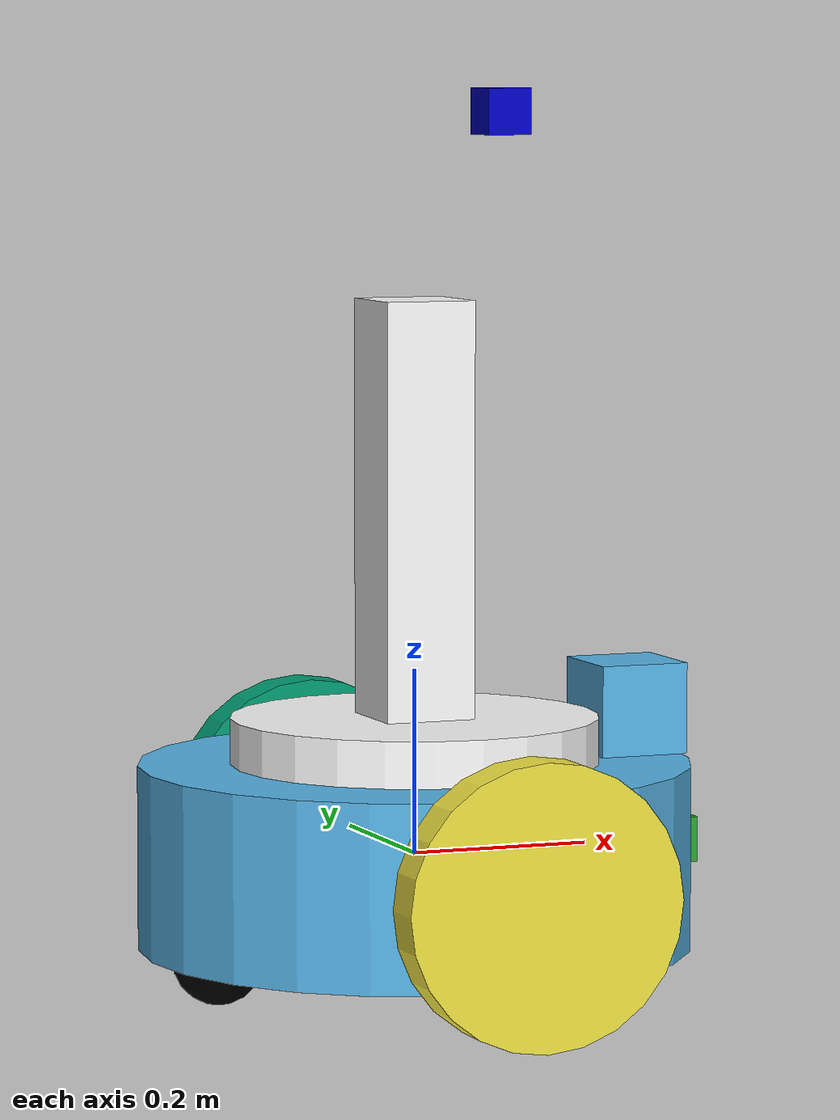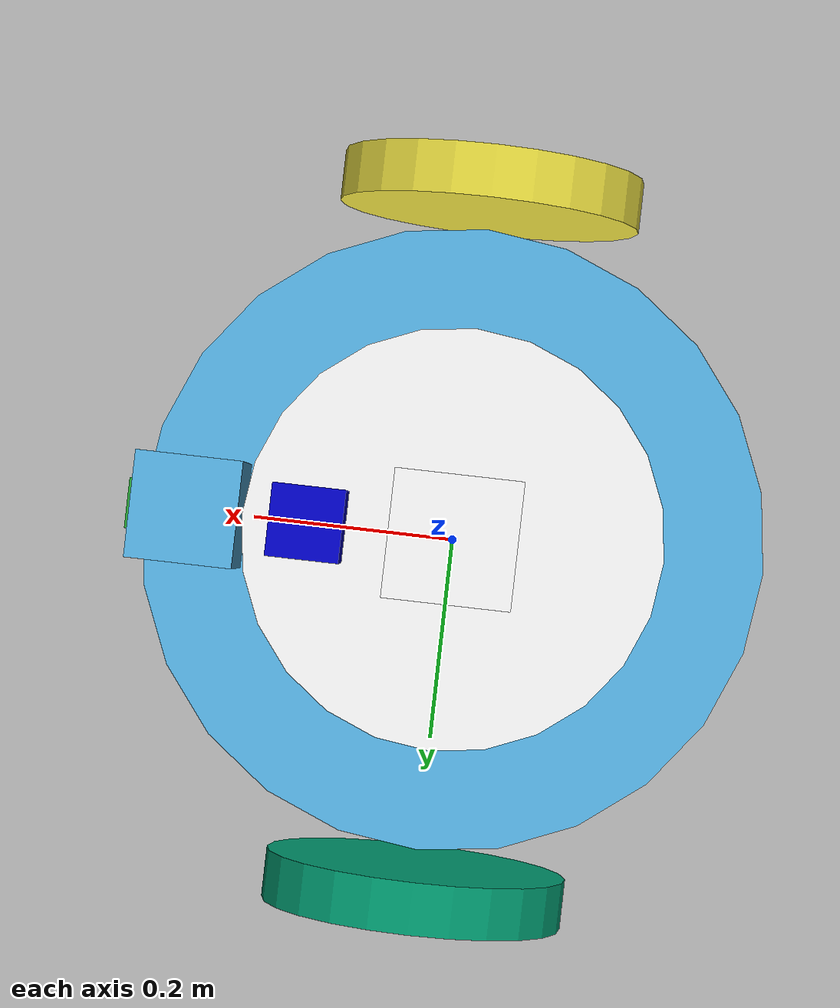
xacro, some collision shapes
<?xml version='1.0'?>

<robot name="my_bot" xmlns:xacro="http://www.ros.org/wiki/xacro">

  <!-- PARAMETERS -->
  <xacro:include filename="$(find my_bot)/urdf/my_bot.gazebo"/>

  <xacro:property name="bodyradius" value="0.3" />
  <xacro:property name="bodylength" value="0.2" />
  <xacro:property name="casterwheelradius" value="0.05" />
  <xacro:property name="central_wheel_radius" value="0.15" />

  <!-- MATERIALS -->
    <material name="blue">
       <color rgba="0 0 0.8 1"/>
     </material>
     <material name="black">
       <color rgba="0 0 0 1"/>
     </material>
     <material name="white">
       <color rgba="1 1 1 1"/>
     </material>

  <!-- MACROS -->

  <!-- caster wheel macro -->
  <xacro:macro name="caster_wheel" params="name origin radius">
    <collision name='${name}_caster_collision'>
          <origin xyz="${origin}" rpy=" 0 0 0"/>
          <geometry>
            <sphere radius="${radius}"/>
          </geometry>
          <surface>
            <friction>
              <ode>
                <mu>0</mu>
                <mu2>0</mu2>
                <slip1>1.0</slip1>
                <slip2>1.0</slip2>
              </ode>
            </friction>
          </surface>
        </collision>

      <visual name='${name}_caster_visual'>
        <origin xyz="${origin}" rpy=" 0 0 0"/>
        <geometry>
          <sphere radius="${radius}"/>
        </geometry>
        <material name="black"/>
      </visual>
  </xacro:macro>

  <!-- wheel macro -->
  <xacro:macro name="motion_wheel" params="name origin_xyx origin_rpy parent_name mass length radius hinge_origin axis">
    <link name="${name}_wheel">
          <inertial>
          <origin xyz="${origin_xyx}" rpy="${origin_rpy}"/>
          <mass value="10.0"/>
          <inertia
              ixx="0.1" ixy="0" ixz="0"
              iyy="0.1" iyz="0"
              izz="0.1"
          />
        </inertial>
        <visual name="${name}_wheel_visual">
          <origin xyz="${origin_xyx}" rpy="${origin_rpy}"/>
          <geometry>
            <cylinder  length="${length}" radius="${radius}"/>
          </geometry>
        </visual>
        <collision name="${name}_wheel_collision">
          <origin xyz="${origin_xyx}" rpy="${origin_rpy}"/>
          <geometry>
          <cylinder  length="${length}" radius="${radius}"/>
          </geometry>
        </collision>
      </link>

      <joint type="continuous" name="${name}_wheel_hinge">
        <origin xyz="${hinge_origin}" rpy="0 0 0"/>
        <child link="${name}_wheel"/>
        <parent link="${parent_name}"/>
        <axis xyz="${axis}" rpy="0 0 0"/>
        <limit effort="10000" velocity="1000"/>
        <joint_properties damping="1.0" friction="1.0"/>
      </joint>
  </xacro:macro>
  <link name="robot_footprint"></link>

  <joint name="robot_footprint_joint" type="fixed">
    <origin xyz="0 0 0" rpy="0 0 0" />
    <parent link="robot_footprint"/>
    <child link="chassis" />
  </joint>

<!-- ROBOT STRUCTURE -->
  <link name='chassis'>
    <pose>0 0 0.1 0 0 0</pose>

    <inertial>
      <mass value="10.0"/>
      <origin xyz="0.0 0 0" rpy=" 0 0 0"/>
      <inertia
          ixx="0.1" ixy="0" ixz="0"
          iyy="0.1" iyz="0"
          izz="0.1"
      />
    </inertial>

    <collision name='collision'>
      <origin xyz="0 0 0" rpy=" 0 0 0"/>
      <geometry>
        <cylinder length="${bodylength}" radius="${bodyradius}"/>
      </geometry>
    </collision>

    <visual name='chassis_visual'>
      <origin xyz="0 0 0" rpy=" 0 0 0"/>
      <geometry>
        <cylinder length="${bodylength}" radius="${bodyradius}"/>
      </geometry>
    </visual>

  <xacro:caster_wheel name="cw1" origin="${bodyradius-3*casterwheelradius/2} 0 -0.1" radius="${casterwheelradius}"/>
  <xacro:caster_wheel name="cw2"  origin="-${bodyradius-3*casterwheelradius/2} 0 -0.1" radius="${casterwheelradius}"/>

  </link>
  <xacro:property name="wheelsxval" value="-0.0" />
  <xacro:motion_wheel name="left"
                      origin_xyx="0.0 0.0 0.0"
                      origin_rpy="0.0 1.5707 1.5707"
                      parent_name="chassis"
                      mass="5.0"
                      length="0.05"
                      radius="0.15"
                      hinge_origin="${wheelsxval} ${bodyradius + 0.05} 0"
                      axis="0 1 0"/>
  <xacro:motion_wheel name="right"
                      origin_xyx="0.0 0.0 0.0"
                      origin_rpy="0.0 1.5707 1.5707"
                      parent_name="chassis"
                      mass="5.0"
                      length="0.05"
                      radius="0.15"
                      hinge_origin="${wheelsxval} -${bodyradius + 0.05} 0"
                      axis="0 1 0"/>

  <link name="grip_base">
    <inertial>
        <mass value="0.5"/>
        <origin xyz="0.0 0 0" rpy=" 0 0 0"/>
        <inertia
            ixx="0.01" ixy="0" ixz="0"
            iyy="0.01" iyz="0"
            izz="0.01"
        />
      </inertial>
      <collision name='collision'>
        <origin xyz="0 0 0" rpy=" 0 0 0"/>
        <geometry>
          <cylinder length="${bodylength-0.1}" radius="${bodyradius-0.1}"/>
        </geometry>
      </collision>
    <visual>
      <geometry>
         <cylinder length="${bodylength-0.1}" radius="${bodyradius-0.1}"/>
      </geometry>
      <material name="white"/>
    </visual>
  </link>

  <joint name="grip_base_swivel" type="fixed">
    <parent link="chassis"/>
    <child link="grip_base"/>
    <origin xyz="0 0 ${bodylength-0.1}"/>
  </joint>

  <link name="grip_post">
    <inertial>
        <mass value="1.0"/>
        <origin xyz="0.0 0 0" rpy=" 0 0 0"/>
        <inertia
            ixx="0.01" ixy="0" ixz="0"
            iyy="0.01" iyz="0"
            izz="0.01"
        />
      </inertial>
      <collision name='collision'>
        <origin xyz="0 0 0" rpy=" 0 0 0"/>
        <geometry>
          <box size="0.01 0.01 0.01"/>
        </geometry>
      </collision>
    <visual>
      <geometry>
         <box size="0.1 0.1 0.5"/>
      </geometry>
      <material name="white"/>
    </visual>
  </link>

    <joint name="base_post_joint" type="fixed">
    <parent link="grip_base"/>
    <child link="grip_post"/>

    <origin xyz="0 0 0.25"/>
  </joint>

<link name="imu_link">
    <inertial>
      <origin xyz="0.0 0.0 0.0" rpy="0.0 0.0 0.0"/>
      <mass value="0.1"/>
      <inertia ixx="1e-6" ixy="0" ixz="0" iyy="1e-6" iyz="0" izz="1e-6"/>
    </inertial>
    <visual name="">
      <origin xyz="0.0 0.0 0.0" rpy="0.0 0.0 0.0"/>
      <geometry>
        <box size="0.05 0.05 0.05"/>
      </geometry>
    </visual>
    <collision>
      <origin xyz="0.0 0.0 0.0" rpy="0.0 0.0 0.0"/>
      <geometry>
        <box size="0.05 0.05 0.05"/>
      </geometry>
    </collision>
  </link>>

  <joint type="fixed" name="imu_joint">
    <origin xyz="0 0 0.1" rpy="0 0 0"/>
    <child link="imu_link"/>
    <parent link="chassis"/>
  </joint>

  <link name="camera">
    <inertial>
      <origin xyz="0.0 0.0 0.0" rpy="0.0 0.0 0.0"/>
      <mass value="0.1"/>
      <inertia ixx="1e-6" ixy="0" ixz="0" iyy="1e-6" iyz="0" izz="1e-6"/>
    </inertial>
    <visual name="">
      <origin xyz="0.0 0.0 0.0" rpy="0.0 0.0 0.0"/>
      <geometry>
        <box size="0.05 0.05 0.05"/>
      </geometry>
    </visual>
    <collision>
      <origin xyz="0.0 0.0 0.0" rpy="0.0 0.0 0.0"/>
      <geometry>
        <box size="0.05 0.05 0.05"/>
      </geometry>
    </collision>
  </link>>

  <joint type="fixed" name="camera_joint">
    <origin xyz="${bodyradius} 0 0" rpy="0 0 0"/>
    <child link="camera"/>
    <parent link="chassis"/>
  </joint>

   <link name="camera2">
    <inertial>
      <origin xyz="0.0 0.0 0.0" rpy="0.0 0.0 0.0"/>
      <mass value="0.1"/>
      <inertia ixx="1e-6" ixy="0" ixz="0" iyy="1e-6" iyz="0" izz="1e-6"/>
    </inertial>
    <visual name="">
      <origin xyz="0.0 0.0 0.0" rpy="0.0 0.0 0.0"/>
      <geometry>
        <box size="0.05 0.05 0.05"/>
      </geometry>
      <material name="blue"/>
    </visual>

    <collision>
      <origin xyz="0.0 0.0 0.0" rpy="0.0 0.0 0.0"/>
      <geometry>
        <box size="0.05 0.05 0.05"/>
      </geometry>
    </collision>
  </link>>

  <joint type="fixed" name="camera2_joint">
    <origin xyz="0.1 0 0.45" rpy="0 0 0"/>
    <child link="camera2"/>
    <parent link="grip_post"/>
  </joint>

  <link name="hokuyo">
    <inertial>
      <origin xyz="0.0 0.0 0.0" rpy="0.0 0.0 0.0"/>
      <mass value="0.1"/>
      <inertia ixx="1e-6" ixy="0" ixz="0" iyy="1e-6" iyz="0" izz="1e-6"/>
    </inertial>
    <visual name="">
    <origin xyz="0.0 0.0 0.0" rpy="0.0 0.0 0.0"/>
    <geometry>
      <mesh filename="package://my_bot/meshes/hokuyo.dae"/>
    </geometry>
    </visual>
    <collision>
      <origin xyz="0.0 0.0 0.0" rpy="0.0 0.0 0.0"/>
      <geometry>
        <box size="0.1 0.1 0.1"/>
      </geometry>
    </collision>
  </link>

  <joint name="hokuyo_joint" type="fixed">
    <origin xyz="${bodyradius-0.05} 0.0 ${bodylength/2+0.05}" rpy="0.0 0.0 0.0"/>
    <parent link="chassis"/>
    <child link="hokuyo"/>
  </joint>

</robot>
